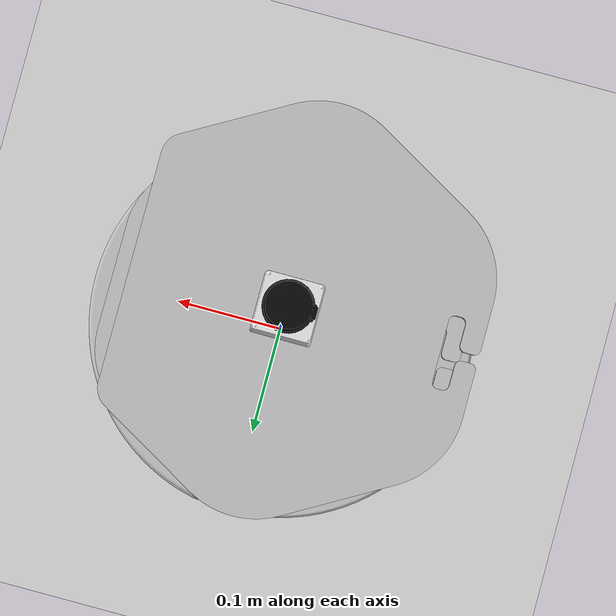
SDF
<sdf version="1.6">
 <world name="default">
  <gravity>0 0 -9.81</gravity>
  <model name="ground_plane">
   <static>1</static>
   <link name="link">
    <collision name="collision">
     <geometry><plane><normal>0 0 1</normal><size>100 100</size></plane></geometry>
     <surface><friction><ode><mu>100</mu><mu2>50</mu2></ode></friction></surface>
    </collision>
    <visual name="visual">
     <cast_shadows>0</cast_shadows>
     <geometry><plane><normal>0 0 1</normal><size>100 100</size></plane></geometry>
     <material>
      <script><uri>file://media/materials/scripts/gazebo.material</uri><name>Gazebo/Grey</name></script>
     </material>
    </visual>
   </link>
  </model>
  <spherical_coordinates>
   <surface_model>EARTH_WGS84</surface_model>
   <latitude_deg>35.6528</latitude_deg>
   <longitude_deg>139.839</longitude_deg>
   <elevation>0</elevation>
   <heading_deg>0</heading_deg>
  </spherical_coordinates>
  <light name="user_point_light_2" type="point">
   <pose>-1.4 1.4 4 0 -0 0</pose>
   <diffuse>1 1 1 1</diffuse>
   <specular>0.1 0.1 0.1 1</specular>
   <attenuation>
    <range>20</range>
    <constant>0.5</constant>
    <linear>0.01</linear>
    <quadratic>0.001</quadratic>
   </attenuation>
   <cast_shadows>0</cast_shadows>
   <direction>0 0 -1</direction>
  </light>
  <light name="user_point_light_3" type="point">
   <pose>-1.4 -1.4 4 0 -0 0</pose>
   <diffuse>1 1 1 1</diffuse>
   <specular>0.1 0.1 0.1 1</specular>
   <attenuation>
    <range>20</range>
    <constant>0.5</constant>
    <linear>0.01</linear>
    <quadratic>0.001</quadratic>
   </attenuation>
   <cast_shadows>0</cast_shadows>
   <direction>0 0 -1</direction>
  </light>
  <magnetic_field>6e-06 2.3e-05 -4.2e-05</magnetic_field>
  <atmosphere type="adiabatic"/>
  <physics name="default_physics" default="0" type="ode">
   <max_step_size>0.001</max_step_size>
   <real_time_factor>1</real_time_factor>
   <real_time_update_rate>1000</real_time_update_rate>
  </physics>
  <scene><ambient>0.4 0.4 0.4 1</ambient><background>0.7 0.7 0.7 1</background><shadows>1</shadows></scene>
  <model name="mobile_base">
   <link name="base_footprint">
    <inertial>
     <pose>-0.002635 -4.1e-05 0.129244 0 -0 0</pose>
     <mass>4.69731</mass>
     <inertia>
      <ixx>0.136502</ixx>
      <ixy>-2.51802e-05</ixy>
      <ixz>0.0108194</ixz>
      <iyy>0.132159</iyy>
      <iyz>4.89571e-05</iyz>
      <izz>0.0741658</izz>
     </inertia>
    </inertial>
    <collision name="base_footprint_fixed_joint_lump__base_link_collision">
     <pose>0 0 0.06969 0 -0 0</pose>
     <geometry><cylinder><length>0.10938</length><radius>0.178</radius></cylinder></geometry>
     <surface><friction><ode><mu>0.3</mu><mu2>0.3</mu2></ode></friction></surface>
    </collision>
    <collision name="base_footprint_fixed_joint_lump__camera_link_collision_1">
     <pose>-0.087 -0.0015 0.2972 0 -0 0</pose>
     <geometry><box><size>0.073 0.276 0.072</size></box></geometry>
    </collision>
    <collision name="base_footprint_fixed_joint_lump__caster_back_link_collision_2">
     <pose>-0.135 0 0.0192 -1.5708 0 0</pose>
     <geometry><cylinder><length>0.0176</length><radius>0.017</radius></cylinder></geometry>
     <surface>
      <contact><ode><kp>1e+06</kp><kd>100</kd><max_vel>1</max_vel><min_depth>0.001</min_depth></ode></contact>
      <friction><ode><mu>0</mu><mu2>0</mu2></ode></friction>
     </surface>
    </collision>
    <collision name="base_footprint_fixed_joint_lump__caster_front_link_collision_3">
     <pose>0.115 0 0.0172 -1.5708 0 0</pose>
     <geometry><cylinder><length>0.0176</length><radius>0.017</radius></cylinder></geometry>
     <surface>
      <contact><ode><kp>1e+06</kp><kd>100</kd><max_vel>1</max_vel><min_depth>0.001</min_depth></ode></contact>
      <friction><ode><mu>0</mu><mu2>0</mu2></ode></friction>
     </surface>
    </collision>
    <collision name="base_footprint_fixed_joint_lump__laser_sensor_link_collision_4">
     <pose>0 0 0.4452 0 -0 0</pose>
     <geometry><box><size>0.1 0.1 0.1</size></box></geometry>
    </collision>
    <collision name="base_footprint_fixed_joint_lump__mount_asus_xtion_pro_link_collision_5">
     <pose>-0.1024 0 0.2822 0 -0 0</pose>
     <geometry><box><size>0.033 0.276 0.012</size></box></geometry>
    </collision>
    <collision name="base_footprint_fixed_joint_lump__plate_bottom_link_collision_6">
     <pose>0 0 0.1408 0 -0 0</pose>
     <geometry><cylinder><length>0.006</length><radius>0.17</radius></cylinder></geometry>
    </collision>
    <collision name="base_footprint_fixed_joint_lump__plate_middle_link_collision_7">
     <pose>0 0 0.1976 0 -0 0</pose>
     <geometry><cylinder><length>0.006</length><radius>0.17</radius></cylinder></geometry>
    </collision>
    <collision name="base_footprint_fixed_joint_lump__plate_top_link_collision_8">
     <pose>0 0 0.4068 0 -0 0</pose>
     <geometry><cylinder><length>0.006</length><radius>0.17</radius></cylinder></geometry>
    </collision>
    <collision name="base_footprint_fixed_joint_lump__pole_bottom_0_link_collision_9">
     <pose>0.12 0.082 0.113 0 -0 0</pose>
     <geometry><cylinder><length>0.0492</length><radius>0.006</radius></cylinder></geometry>
    </collision>
    <collision name="base_footprint_fixed_joint_lump__pole_bottom_1_link_collision_10">
     <pose>0.055 0.12 0.113 0 -0 0</pose>
     <geometry><cylinder><length>0.0492</length><radius>0.006</radius></cylinder></geometry>
    </collision>
    <collision name="base_footprint_fixed_joint_lump__pole_bottom_2_link_collision_11">
     <pose>-0.055 0.12 0.113 0 -0 0</pose>
     <geometry><cylinder><length>0.0492</length><radius>0.006</radius></cylinder></geometry>
    </collision>
    <collision name="base_footprint_fixed_joint_lump__pole_bottom_3_link_collision_12">
     <pose>0.12 -0.082 0.113 0 -0 0</pose>
     <geometry><cylinder><length>0.0492</length><radius>0.006</radius></cylinder></geometry>
    </collision>
    <collision name="base_footprint_fixed_joint_lump__pole_bottom_4_link_collision_13">
     <pose>0.055 -0.12 0.113 0 -0 0</pose>
     <geometry><cylinder><length>0.0492</length><radius>0.006</radius></cylinder></geometry>
    </collision>
    <collision name="base_footprint_fixed_joint_lump__pole_bottom_5_link_collision_14">
     <pose>-0.055 -0.12 0.113 0 -0 0</pose>
     <geometry><cylinder><length>0.0492</length><radius>0.006</radius></cylinder></geometry>
    </collision>
    <collision name="base_footprint_fixed_joint_lump__pole_kinect_0_link_collision_15">
     <pose>-0.1024 0.098 0.2474 0 -0 0</pose>
     <geometry><cylinder><length>0.0936</length><radius>0.006</radius></cylinder></geometry>
    </collision>
    <collision name="base_footprint_fixed_joint_lump__pole_kinect_1_link_collision_16">
     <pose>-0.1024 -0.098 0.2474 0 -0 0</pose>
     <geometry><cylinder><length>0.0936</length><radius>0.006</radius></cylinder></geometry>
    </collision>
    <collision name="base_footprint_fixed_joint_lump__pole_middle_0_link_collision_17">
     <pose>0.0381 0.1505 0.1742 0 -0 0</pose>
     <geometry><cylinder><length>0.0608</length><radius>0.006</radius></cylinder></geometry>
    </collision>
    <collision name="base_footprint_fixed_joint_lump__pole_middle_1_link_collision_18">
     <pose>0.0381 -0.1505 0.1742 0 -0 0</pose>
     <geometry><cylinder><length>0.0608</length><radius>0.006</radius></cylinder></geometry>
    </collision>
    <collision name="base_footprint_fixed_joint_lump__pole_middle_2_link_collision_19">
     <pose>-0.0381 0.1505 0.1742 0 -0 0</pose>
     <geometry><cylinder><length>0.0608</length><radius>0.006</radius></cylinder></geometry>
    </collision>
    <collision name="base_footprint_fixed_joint_lump__pole_middle_3_link_collision_20">
     <pose>-0.0381 -0.1505 0.1742 0 -0 0</pose>
     <geometry><cylinder><length>0.0608</length><radius>0.006</radius></cylinder></geometry>
    </collision>
    <collision name="base_footprint_fixed_joint_lump__pole_top_0_link_collision_21">
     <pose>0.0381 0.1505 0.3022 0 -0 0</pose>
     <geometry><cylinder><length>0.2032</length><radius>0.006</radius></cylinder></geometry>
    </collision>
    <collision name="base_footprint_fixed_joint_lump__pole_top_1_link_collision_22">
     <pose>0.0381 -0.1505 0.3022 0 -0 0</pose>
     <geometry><cylinder><length>0.2032</length><radius>0.006</radius></cylinder></geometry>
    </collision>
    <collision name="base_footprint_fixed_joint_lump__pole_top_2_link_collision_23">
     <pose>-0.0381 0.1505 0.3022 0 -0 0</pose>
     <geometry><cylinder><length>0.2032</length><radius>0.006</radius></cylinder></geometry>
    </collision>
    <collision name="base_footprint_fixed_joint_lump__pole_top_3_link_collision_24">
     <pose>-0.0381 -0.1505 0.3022 0 -0 0</pose>
     <geometry><cylinder><length>0.2032</length><radius>0.006</radius></cylinder></geometry>
    </collision>
    <visual name="base_footprint_fixed_joint_lump__base_link_visual">
     <pose>0.001 0 0.06219 0 -0 0</pose>
     <geometry>
      <mesh>
       <scale>1 1 1</scale>
       <uri>/home/simulations/public_sim_ws/src/all/turtlebot/kobuki_description/meshes/main_body.dae</uri>
      </mesh>
     </geometry>
     <material><script><uri>__default__</uri><name>__default__</name></script></material>
    </visual>
    <visual name="base_footprint_fixed_joint_lump__camera_link_visual_1">
     <pose>-0.102 0.002 0.3012 0 -0 0</pose>
     <geometry>
      <mesh>
       <scale>1 1 1</scale>
       <uri>/home/simulations/public_sim_ws/src/all/turtlebot/kobuki_description/meshes/sensors/xtion_pro_camera.dae</uri>
      </mesh>
     </geometry>
     <material><script><uri>__default__</uri><name>__default__</name></script></material>
    </visual>
    <visual name="base_footprint_fixed_joint_lump__laser_sensor_link_visual_2">
     <pose>0 0 0.4452 0 -0 0</pose>
     <geometry>
      <mesh>
       <scale>1 1 1</scale>
       <uri>/home/simulations/public_sim_ws/src/all/hokuyo_model/hokuyo/meshes/hokuyo.dae</uri>
      </mesh>
     </geometry>
     <material><script><uri>__default__</uri><name>__default__</name></script></material>
    </visual>
    <visual name="base_footprint_fixed_joint_lump__mount_asus_xtion_pro_link_visual_3">
     <pose>-0.1024 0 0.2822 -1.5708 0 0</pose>
     <geometry>
      <mesh>
       <scale>1 1 1</scale>
       <uri>/home/simulations/public_sim_ws/src/all/turtlebot/kobuki_description/meshes/sensors/xtion_pro_stack.dae</uri>
      </mesh>
     </geometry>
    </visual>
    <visual name="base_footprint_fixed_joint_lump__plate_bottom_link_visual_4">
     <pose>0.02364 0 0.1408 0 -0 0</pose>
     <geometry>
      <mesh>
       <scale>1 1 1</scale>
       <uri>/home/simulations/public_sim_ws/src/all/turtlebot/kobuki_description/meshes/stacks/hexagons/plate_bottom.dae</uri>
      </mesh>
     </geometry>
    </visual>
    <visual name="base_footprint_fixed_joint_lump__plate_middle_link_visual_5">
     <pose>-0.01364 0 0.1976 0 -0 0</pose>
     <geometry>
      <mesh>
       <scale>1 1 1</scale>
       <uri>/home/simulations/public_sim_ws/src/all/turtlebot/kobuki_description/meshes/stacks/hexagons/plate_middle.dae</uri>
      </mesh>
     </geometry>
    </visual>
    <visual name="base_footprint_fixed_joint_lump__plate_top_link_visual_6">
     <pose>-0.01364 0 0.4068 0 -0 0</pose>
     <geometry>
      <mesh>
       <scale>1 1 1</scale>
       <uri>/home/simulations/public_sim_ws/src/all/turtlebot/kobuki_description/meshes/stacks/hexagons/plate_top.dae</uri>
      </mesh>
     </geometry>
    </visual>
    <visual name="base_footprint_fixed_joint_lump__pole_bottom_0_link_visual_7">
     <pose>0.12 0.082 0.113 0 -0 0</pose>
     <geometry>
      <mesh>
       <scale>1 1 1</scale>
       <uri>/home/simulations/public_sim_ws/src/all/turtlebot/kobuki_description/meshes/stacks/hexagons/pole_bottom.dae</uri>
      </mesh>
     </geometry>
    </visual>
    <visual name="base_footprint_fixed_joint_lump__pole_bottom_1_link_visual_8">
     <pose>0.055 0.12 0.113 0 -0 0</pose>
     <geometry>
      <mesh>
       <scale>1 1 1</scale>
       <uri>/home/simulations/public_sim_ws/src/all/turtlebot/kobuki_description/meshes/stacks/hexagons/pole_bottom.dae</uri>
      </mesh>
     </geometry>
    </visual>
    <visual name="base_footprint_fixed_joint_lump__pole_bottom_2_link_visual_9">
     <pose>-0.055 0.12 0.113 0 -0 0</pose>
     <geometry>
      <mesh>
       <scale>1 1 1</scale>
       <uri>/home/simulations/public_sim_ws/src/all/turtlebot/kobuki_description/meshes/stacks/hexagons/pole_bottom.dae</uri>
      </mesh>
     </geometry>
    </visual>
    <visual name="base_footprint_fixed_joint_lump__pole_bottom_3_link_visual_10">
     <pose>0.12 -0.082 0.113 0 -0 0</pose>
     <geometry>
      <mesh>
       <scale>1 1 1</scale>
       <uri>/home/simulations/public_sim_ws/src/all/turtlebot/kobuki_description/meshes/stacks/hexagons/pole_bottom.dae</uri>
      </mesh>
     </geometry>
    </visual>
    <visual name="base_footprint_fixed_joint_lump__pole_bottom_4_link_visual_11">
     <pose>0.055 -0.12 0.113 0 -0 0</pose>
     <geometry>
      <mesh>
       <scale>1 1 1</scale>
       <uri>/home/simulations/public_sim_ws/src/all/turtlebot/kobuki_description/meshes/stacks/hexagons/pole_bottom.dae</uri>
      </mesh>
     </geometry>
    </visual>
    <visual name="base_footprint_fixed_joint_lump__pole_bottom_5_link_visual_12">
     <pose>-0.055 -0.12 0.113 0 -0 0</pose>
     <geometry>
      <mesh>
       <scale>1 1 1</scale>
       <uri>/home/simulations/public_sim_ws/src/all/turtlebot/kobuki_description/meshes/stacks/hexagons/pole_bottom.dae</uri>
      </mesh>
     </geometry>
    </visual>
    <visual name="base_footprint_fixed_joint_lump__pole_kinect_0_link_visual_13">
     <pose>-0.1024 0.098 0.2374 0 -0 0</pose>
     <geometry>
      <mesh>
       <scale>1 1 1</scale>
       <uri>/home/simulations/public_sim_ws/src/all/turtlebot/kobuki_description/meshes/sensors/sensor_pole.dae</uri>
      </mesh>
     </geometry>
    </visual>
    <visual name="base_footprint_fixed_joint_lump__pole_kinect_1_link_visual_14">
     <pose>-0.1024 -0.098 0.2374 0 -0 0</pose>
     <geometry>
      <mesh>
       <scale>1 1 1</scale>
       <uri>/home/simulations/public_sim_ws/src/all/turtlebot/kobuki_description/meshes/sensors/sensor_pole.dae</uri>
      </mesh>
     </geometry>
    </visual>
    <visual name="base_footprint_fixed_joint_lump__pole_middle_0_link_visual_15">
     <pose>0.0381 0.1505 0.1742 3.14159 -0 3.14159</pose>
     <geometry>
      <mesh>
       <scale>1 1 1</scale>
       <uri>/home/simulations/public_sim_ws/src/all/turtlebot/kobuki_description/meshes/stacks/hexagons/pole_middle.dae</uri>
      </mesh>
     </geometry>
    </visual>
    <visual name="base_footprint_fixed_joint_lump__pole_middle_1_link_visual_16">
     <pose>0.0381 -0.1505 0.1742 3.14159 -0 3.14159</pose>
     <geometry>
      <mesh>
       <scale>1 1 1</scale>
       <uri>/home/simulations/public_sim_ws/src/all/turtlebot/kobuki_description/meshes/stacks/hexagons/pole_middle.dae</uri>
      </mesh>
     </geometry>
    </visual>
    <visual name="base_footprint_fixed_joint_lump__pole_middle_2_link_visual_17">
     <pose>-0.0381 0.1505 0.1742 3.14159 -0 3.14159</pose>
     <geometry>
      <mesh>
       <scale>1 1 1</scale>
       <uri>/home/simulations/public_sim_ws/src/all/turtlebot/kobuki_description/meshes/stacks/hexagons/pole_middle.dae</uri>
      </mesh>
     </geometry>
    </visual>
    <visual name="base_footprint_fixed_joint_lump__pole_middle_3_link_visual_18">
     <pose>-0.0381 -0.1505 0.1742 3.14159 -0 3.14159</pose>
     <geometry>
      <mesh>
       <scale>1 1 1</scale>
       <uri>/home/simulations/public_sim_ws/src/all/turtlebot/kobuki_description/meshes/stacks/hexagons/pole_middle.dae</uri>
      </mesh>
     </geometry>
    </visual>
    <visual name="base_footprint_fixed_joint_lump__pole_top_0_link_visual_19">
     <pose>0.0381 0.1505 0.3022 0 -0 0</pose>
     <geometry>
      <mesh>
       <scale>1 1 1</scale>
       <uri>/home/simulations/public_sim_ws/src/all/turtlebot/kobuki_description/meshes/stacks/hexagons/pole_top.dae</uri>
      </mesh>
     </geometry>
    </visual>
    <visual name="base_footprint_fixed_joint_lump__pole_top_1_link_visual_20">
     <pose>0.0381 -0.1505 0.3022 0 -0 0</pose>
     <geometry>
      <mesh>
       <scale>1 1 1</scale>
       <uri>/home/simulations/public_sim_ws/src/all/turtlebot/kobuki_description/meshes/stacks/hexagons/pole_top.dae</uri>
      </mesh>
     </geometry>
    </visual>
    <visual name="base_footprint_fixed_joint_lump__pole_top_2_link_visual_21">
     <pose>-0.0381 0.1505 0.3022 0 -0 0</pose>
     <geometry>
      <mesh>
       <scale>1 1 1</scale>
       <uri>/home/simulations/public_sim_ws/src/all/turtlebot/kobuki_description/meshes/stacks/hexagons/pole_top.dae</uri>
      </mesh>
     </geometry>
    </visual>
    <visual name="base_footprint_fixed_joint_lump__pole_top_3_link_visual_22">
     <pose>-0.0381 -0.1505 0.3022 0 -0 0</pose>
     <geometry>
      <mesh>
       <scale>1 1 1</scale>
       <uri>/home/simulations/public_sim_ws/src/all/turtlebot/kobuki_description/meshes/stacks/hexagons/pole_top.dae</uri>
      </mesh>
     </geometry>
    </visual>
    <sensor name="bumpers" type="contact">
     <always_on>1</always_on>
     <update_rate>50</update_rate>
     <visualize>1</visualize>
     <contact><collision>base_footprint_collision_base_link</collision><topic>__default_topic__</topic></contact>
     <pose>0 0 0.0102 0 -0 0</pose>
    </sensor>
    <sensor name="camera" type="depth">
     <always_on>1</always_on>
     <update_rate>20</update_rate>
     <camera name="__default__">
      <horizontal_fov>1.0472</horizontal_fov>
      <image><format>R8G8B8</format><width>640</width><height>480</height></image>
      <clip><near>0.05</near><far>8</far></clip>
     </camera>
     <plugin name="kinect_camera_controller" filename="libgazebo_ros_openni_kinect.so">
      <cameraName>camera</cameraName>
      <alwaysOn>true</alwaysOn>
      <updateRate>10</updateRate>
      <imageTopicName>rgb/image_raw</imageTopicName>
      <depthImageTopicName>depth/image_raw</depthImageTopicName>
      <pointCloudTopicName>depth/points</pointCloudTopicName>
      <cameraInfoTopicName>rgb/camera_info</cameraInfoTopicName>
      <depthImageCameraInfoTopicName>depth/camera_info</depthImageCameraInfoTopicName>
      <frameName>camera_depth_optical_frame</frameName>
      <baseline>0.1</baseline>
      <distortion_k1>0.0</distortion_k1>
      <distortion_k2>0.0</distortion_k2>
      <distortion_k3>0.0</distortion_k3>
      <distortion_t1>0.0</distortion_t1>
      <distortion_t2>0.0</distortion_t2>
      <pointCloudCutoff>0.4</pointCloudCutoff>
      <robotNamespace>/</robotNamespace>
     </plugin>
     <pose>-0.087 -0.0015 0.2972 0 -0 0</pose>
    </sensor>
    <sensor name="cliff_sensor_front" type="ray">
     <always_on>1</always_on>
     <update_rate>50</update_rate>
     <visualize>1</visualize>
     <ray>
      <scan>
       <horizontal>
        <samples>50</samples>
        <resolution>1</resolution>
        <min_angle>-0.0436</min_angle>
        <max_angle>0.0436</max_angle>
       </horizontal>
       <vertical><samples>1</samples><min_angle>0</min_angle><max_angle>0</max_angle></vertical>
      </scan>
      <range><min>0.01</min><max>0.15</max><resolution>1</resolution></range>
     </ray>
     <pose>0.156 0 0.0316 3.14159 1.57079 3.14159</pose>
    </sensor>
    <sensor name="cliff_sensor_left" type="ray">
     <always_on>1</always_on>
     <update_rate>50</update_rate>
     <visualize>1</visualize>
     <ray>
      <scan>
       <horizontal>
        <samples>50</samples>
        <resolution>1</resolution>
        <min_angle>-0.0436</min_angle>
        <max_angle>0.0436</max_angle>
       </horizontal>
       <vertical><samples>1</samples><min_angle>0</min_angle><max_angle>0</max_angle></vertical>
      </scan>
      <range><min>0.01</min><max>0.15</max><resolution>1</resolution></range>
     </ray>
     <pose>0.08734 0.13601 0.0316 3.14159 1.57079 3.14159</pose>
    </sensor>
    <sensor name="cliff_sensor_right" type="ray">
     <always_on>1</always_on>
     <update_rate>50</update_rate>
     <visualize>1</visualize>
     <ray>
      <scan>
       <horizontal>
        <samples>50</samples>
        <resolution>1</resolution>
        <min_angle>-0.0436</min_angle>
        <max_angle>0.0436</max_angle>
       </horizontal>
       <vertical><samples>1</samples><min_angle>0</min_angle><max_angle>0</max_angle></vertical>
      </scan>
      <range><min>0.01</min><max>0.15</max><resolution>1</resolution></range>
     </ray>
     <pose>0.085 -0.13601 0.0316 3.14159 1.57079 3.14159</pose>
    </sensor>
    <sensor name="imu" type="imu">
     <always_on>1</always_on>
     <update_rate>50</update_rate>
     <visualize>0</visualize>
     <imu>
      <angular_velocity>
       <x>
        <noise type="gaussian">
         <mean>0</mean>
         <stddev>1.96e-06</stddev>
         <bias_mean>0</bias_mean>
         <bias_stddev>0</bias_stddev>
        </noise>
       </x>
       <y>
        <noise type="gaussian">
         <mean>0</mean>
         <stddev>1.96e-06</stddev>
         <bias_mean>0</bias_mean>
         <bias_stddev>0</bias_stddev>
        </noise>
       </y>
       <z>
        <noise type="gaussian">
         <mean>0</mean>
         <stddev>1.96e-06</stddev>
         <bias_mean>0</bias_mean>
         <bias_stddev>0</bias_stddev>
        </noise>
       </z>
      </angular_velocity>
      <linear_acceleration>
       <x>
        <noise type="gaussian">
         <mean>0</mean>
         <stddev>0.017</stddev>
         <bias_mean>0.1</bias_mean>
         <bias_stddev>0.001</bias_stddev>
        </noise>
       </x>
       <y>
        <noise type="gaussian">
         <mean>0</mean>
         <stddev>0.017</stddev>
         <bias_mean>0.1</bias_mean>
         <bias_stddev>0.001</bias_stddev>
        </noise>
       </y>
       <z>
        <noise type="gaussian">
         <mean>0</mean>
         <stddev>0.017</stddev>
         <bias_mean>0.1</bias_mean>
         <bias_stddev>0.001</bias_stddev>
        </noise>
       </z>
      </linear_acceleration>
     </imu>
     <pose>0.056 0.062 0.0304 0 -0 0</pose>
    </sensor>
    <sensor name="laser_sensor" type="gpu_ray">
     <visualize>0</visualize>
     <update_rate>40</update_rate>
     <ray>
      <scan>
       <horizontal>
        <samples>720</samples>
        <resolution>1</resolution>
        <min_angle>-1.5708</min_angle>
        <max_angle>1.5708</max_angle>
       </horizontal>
      </scan>
      <range><min>0.1</min><max>30</max><resolution>0.01</resolution></range>
      <noise><type>gaussian</type><mean>0</mean><stddev>0.01</stddev></noise>
     </ray>
     <plugin name="gazebo_ros_head_hokuyo_controller" filename="libgazebo_ros_gpu_laser.so">
      <topicName>/kobuki/laser/scan</topicName>
      <frameName>laser_sensor_link</frameName>
      <robotNamespace>/</robotNamespace>
     </plugin>
     <pose>0 0 0.4452 0 -0 0</pose>
    </sensor>
   </link>
   <link name="wheel_left_link">
    <pose>0 0.115 0.0352 -1.5708 0 0</pose>
    <inertial>
     <mass>0.01</mass>
     <inertia><ixx>0.001</ixx><ixy>0</ixy><ixz>0</ixz><iyy>0.001</iyy><iyz>0</iyz><izz>0.001</izz></inertia>
    </inertial>
    <collision name="wheel_left_link_collision">
     <geometry><cylinder><length>0.0206</length><radius>0.0352</radius></cylinder></geometry>
     <surface>
      <contact><ode><kp>1e+06</kp><kd>100</kd><max_vel>1</max_vel><min_depth>0.001</min_depth></ode></contact>
      <friction><ode><mu>1</mu><mu2>1</mu2></ode></friction>
     </surface>
    </collision>
    <visual name="wheel_left_link_visual">
     <geometry>
      <mesh>
       <scale>1 1 1</scale>
       <uri>/home/simulations/public_sim_ws/src/all/turtlebot/kobuki_description/meshes/wheel.dae</uri>
      </mesh>
     </geometry>
     <material><script><uri>__default__</uri><name>__default__</name></script></material>
    </visual>
   </link>
   <joint name="wheel_left_joint" type="revolute">
    <child>wheel_left_link</child>
    <parent>base_footprint</parent>
    <axis>
     <xyz>0 1 0</xyz>
     <limit><lower>-1e+16</lower><upper>1e+16</upper></limit>
     <dynamics><spring_reference>0</spring_reference><spring_stiffness>0</spring_stiffness></dynamics>
     <use_parent_model_frame>1</use_parent_model_frame>
    </axis>
   </joint>
   <link name="wheel_right_link">
    <pose>0 -0.115 0.0352 -1.5708 0 0</pose>
    <inertial>
     <mass>0.01</mass>
     <inertia><ixx>0.001</ixx><ixy>0</ixy><ixz>0</ixz><iyy>0.001</iyy><iyz>0</iyz><izz>0.001</izz></inertia>
    </inertial>
    <collision name="wheel_right_link_collision">
     <geometry><cylinder><length>0.0206</length><radius>0.035</radius></cylinder></geometry>
     <surface>
      <contact><ode><kp>1e+06</kp><kd>100</kd><max_vel>1</max_vel><min_depth>0.001</min_depth></ode></contact>
      <friction><ode><mu>1</mu><mu2>1</mu2></ode></friction>
     </surface>
    </collision>
    <visual name="wheel_right_link_visual">
     <geometry>
      <mesh>
       <scale>1 1 1</scale>
       <uri>/home/simulations/public_sim_ws/src/all/turtlebot/kobuki_description/meshes/wheel.dae</uri>
      </mesh>
     </geometry>
     <material><script><uri>__default__</uri><name>__default__</name></script></material>
    </visual>
   </link>
   <joint name="wheel_right_joint" type="revolute">
    <child>wheel_right_link</child>
    <parent>base_footprint</parent>
    <axis>
     <xyz>0 1 0</xyz>
     <limit><lower>-1e+16</lower><upper>1e+16</upper></limit>
     <dynamics><spring_reference>0</spring_reference><spring_stiffness>0</spring_stiffness></dynamics>
     <use_parent_model_frame>1</use_parent_model_frame>
    </axis>
   </joint>
   <static>0</static>
   <plugin name="differential_drive_controller" filename="libgazebo_ros_diff_drive.so">
    <alwaysOn>true</alwaysOn>
    <updateRate>20</updateRate>
    <leftJoint>wheel_right_joint</leftJoint>
    <rightJoint>wheel_left_joint</rightJoint>
    <wheelSeparation>.230</wheelSeparation>
    <wheelDiameter>0.070</wheelDiameter>
    <torque>1.0</torque>
    <commandTopic>cmd_vel</commandTopic>
    <odometryTopic>odom</odometryTopic>
    <odometryFrame>odom</odometryFrame>
    <robotBaseFrame>base_footprint</robotBaseFrame>
    <publishWheelJointState>true</publishWheelJointState>
    <legacyMode>true</legacyMode>
    <robotNamespace>/</robotNamespace>
   </plugin>
   <pose>0.000252 2.9e-05 -0.000247 0.000765 -0.014405 -0.000923</pose>
  </model>
 </world>
</sdf>
